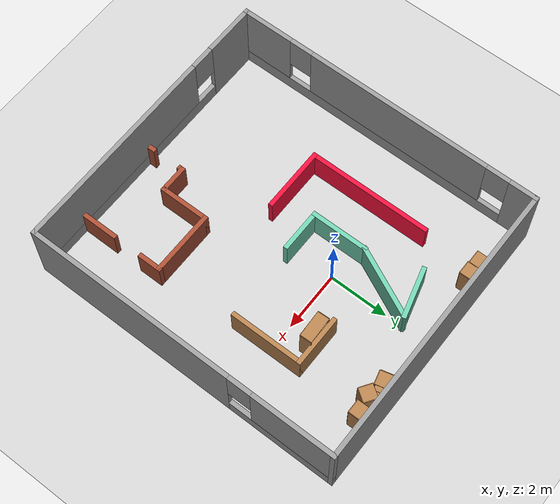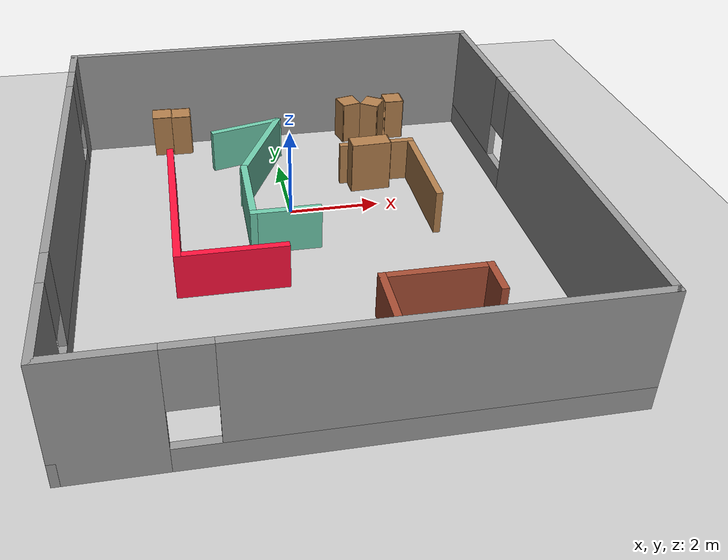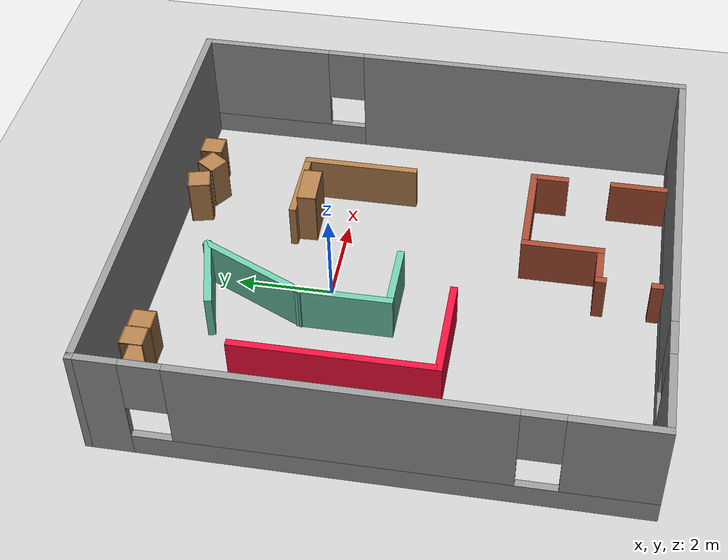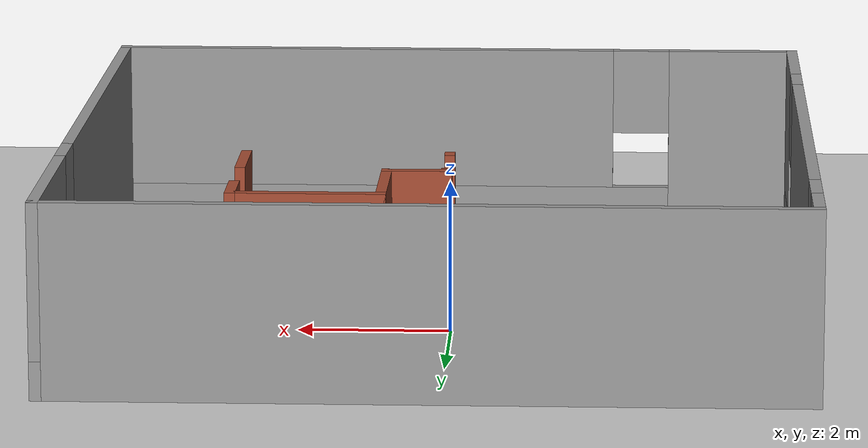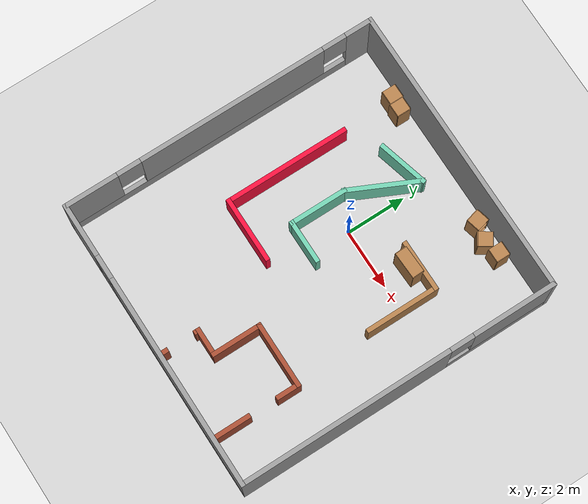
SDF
<sdf version="1.6">
 <world name="default">
  <model name="ground_plane">
   <static>1</static>
   <link name="link">
    <collision name="collision">
     <geometry><plane><normal>0 0 1</normal><size>100 100</size></plane></geometry>
     <surface>
      <contact><collide_bitmask>65535</collide_bitmask></contact>
      <friction><ode><mu>100</mu><mu2>50</mu2></ode></friction>
     </surface>
    </collision>
    <visual name="visual">
     <cast_shadows>0</cast_shadows>
     <geometry><plane><normal>0 0 1</normal><size>100 100</size></plane></geometry>
     <material>
      <script><uri>file://media/materials/scripts/gazebo.material</uri><name>Gazebo/Grey</name></script>
     </material>
    </visual>
   </link>
  </model>
  <model name="rightone">
   <pose>0.16977 -1.56578 0 0 -0 0</pose>
   <link name="Wall_16">
    <collision name="Wall_16_Collision">
     <geometry><box><size>4.25 0.15 1</size></box></geometry>
     <pose>0 0 0.5 0 -0 0</pose>
    </collision>
    <visual name="Wall_16_Visual">
     <pose>0 0 0.5 0 -0 0</pose>
     <geometry><box><size>4.25 0.15 1</size></box></geometry>
     <material>
      <script><uri>file://media/materials/scripts/gazebo.material</uri><name>Gazebo/Grey</name></script>
      <ambient>1 0.0627451 0.235294 1</ambient>
     </material>
     <meta><layer>0</layer></meta>
    </visual>
    <pose>-2.73877 0.989782 0 0 0 -1.5708</pose>
   </link>
   <link name="Wall_17">
    <collision name="Wall_17_Collision">
     <geometry><box><size>2.25 0.15 1</size></box></geometry>
     <pose>0 0 0.5 0 -0 0</pose>
    </collision>
    <visual name="Wall_17_Visual">
     <pose>0 0 0.5 0 -0 0</pose>
     <geometry><box><size>2.25 0.15 1</size></box></geometry>
     <material>
      <script><uri>file://media/materials/scripts/gazebo.material</uri><name>Gazebo/Grey</name></script>
      <ambient>1 0.0627451 0.235294 1</ambient>
     </material>
     <meta><layer>0</layer></meta>
    </visual>
    <pose>-1.68877 -1.06022 0 0 -0 0</pose>
   </link>
   <link name="Wall_20">
    <collision name="Wall_20_Collision">
     <geometry><box><size>1.75 0.15 1</size></box></geometry>
     <pose>0 0 0.5 0 -0 0</pose>
    </collision>
    <visual name="Wall_20_Visual">
     <pose>0 0 0.5 0 -0 0</pose>
     <geometry><box><size>1.75 0.15 1</size></box></geometry>
     <material>
      <script><uri>file://media/materials/scripts/gazebo.material</uri><name>Gazebo/Grey</name></script>
      <ambient>0.435294 0.796078 0.67451 1</ambient>
     </material>
     <meta><layer>0</layer></meta>
    </visual>
    <pose>-0.890549 3.96314 0 0 -0 0.261799</pose>
   </link>
   <link name="Wall_21">
    <collision name="Wall_21_Collision">
     <geometry><box><size>2.53984 0.15 1</size></box></geometry>
     <pose>0 0 0.5 0 -0 0</pose>
    </collision>
    <visual name="Wall_21_Visual">
     <pose>0 0 0.5 0 -0 0</pose>
     <geometry><box><size>2.53984 0.15 1</size></box></geometry>
     <material>
      <script><uri>file://media/materials/scripts/gazebo.material</uri><name>Gazebo/Grey</name></script>
      <ambient>0.435294 0.796078 0.67451 1</ambient>
     </material>
     <meta><layer>0</layer></meta>
    </visual>
    <pose>-0.630789 3.09099 0 0 0 -2.01452</pose>
   </link>
   <link name="Wall_22">
    <collision name="Wall_22_Collision">
     <geometry><box><size>2 0.15 1</size></box></geometry>
     <pose>0 0 0.5 0 -0 0</pose>
    </collision>
    <visual name="Wall_22_Visual">
     <pose>0 0 0.5 0 -0 0</pose>
     <geometry><box><size>2 0.15 1</size></box></geometry>
     <material>
      <script><uri>file://media/materials/scripts/gazebo.material</uri><name>Gazebo/Grey</name></script>
      <ambient>0.435294 0.796078 0.67451 1</ambient>
     </material>
     <meta><layer>0</layer></meta>
    </visual>
    <pose>-1.14377 1.08678 0 0 0 -1.5708</pose>
   </link>
   <link name="Wall_23">
    <collision name="Wall_23_Collision">
     <geometry><box><size>1.5 0.15 1</size></box></geometry>
     <pose>0 0 0.5 0 -0 0</pose>
    </collision>
    <visual name="Wall_23_Visual">
     <pose>0 0 0.5 0 -0 0</pose>
     <geometry><box><size>1.5 0.15 1</size></box></geometry>
     <material>
      <script><uri>file://media/materials/scripts/gazebo.material</uri><name>Gazebo/Grey</name></script>
      <ambient>0.435294 0.796078 0.67451 1</ambient>
     </material>
     <meta><layer>0</layer></meta>
    </visual>
    <pose>-0.468771 0.161782 0 0 -0 0</pose>
   </link>
   <link name="Wall_25">
    <collision name="Wall_25_Collision">
     <geometry><box><size>1.75 0.15 1</size></box></geometry>
     <pose>0 0 0.5 0 -0 0</pose>
    </collision>
    <visual name="Wall_25_Visual">
     <pose>0 0 0.5 0 -0 0</pose>
     <geometry><box><size>1.75 0.15 1</size></box></geometry>
     <material>
      <script><uri>file://media/materials/scripts/gazebo.material</uri><name>Gazebo/Wood</name></script>
      <ambient>1 1 1 1</ambient>
     </material>
     <meta><layer>0</layer></meta>
    </visual>
    <pose>2.02823 2.65378 0 0 -0 0</pose>
   </link>
   <link name="Wall_26">
    <collision name="Wall_26_Collision">
     <geometry><box><size>2.5 0.15 1</size></box></geometry>
     <pose>0 0 0.5 0 -0 0</pose>
    </collision>
    <visual name="Wall_26_Visual">
     <pose>0 0 0.5 0 -0 0</pose>
     <geometry><box><size>2.5 0.15 1</size></box></geometry>
     <material>
      <script><uri>file://media/materials/scripts/gazebo.material</uri><name>Gazebo/Wood</name></script>
      <ambient>1 1 1 1</ambient>
     </material>
     <meta><layer>0</layer></meta>
    </visual>
    <pose>2.82823 1.47878 0 0 0 -1.5708</pose>
   </link>
   <link name="Wall_28">
    <pose>0.109229 -4.59822 0 0 -0 1.5708</pose>
    <visual name="Wall_28_Visual_0">
     <pose>-0.567304 0 0.5 0 -0 0</pose>
     <geometry><box><size>0.379084 0.15 1</size></box></geometry>
     <material>
      <script><uri>file://media/materials/scripts/gazebo.material</uri><name>Gazebo/Bricks</name></script>
      <ambient>1 1 1 1</ambient>
     </material>
     <meta><layer>0</layer></meta>
    </visual>
    <collision name="Wall_28_Collision_0">
     <geometry><box><size>0.379084 0.15 1</size></box></geometry>
     <pose>-0.567304 0 0.5 0 -0 0</pose>
    </collision>
    <visual name="Wall_28_Visual_1">
     <pose>0.639542 0 0.5 0 -0 0</pose>
     <geometry><box><size>0.234608 0.15 1</size></box></geometry>
     <material>
      <script><uri>file://media/materials/scripts/gazebo.material</uri><name>Gazebo/Bricks</name></script>
      <ambient>1 1 1 1</ambient>
     </material>
     <meta><layer>0</layer></meta>
    </visual>
    <collision name="Wall_28_Collision_1">
     <geometry><box><size>0.234608 0.15 1</size></box></geometry>
     <pose>0.639542 0 0.5 0 -0 0</pose>
    </collision>
   </link>
   <link name="Wall_29">
    <collision name="Wall_29_Collision">
     <geometry><box><size>1 0.15 1</size></box></geometry>
     <pose>0 0 0.5 0 -0 0</pose>
    </collision>
    <visual name="Wall_29_Visual">
     <pose>0 0 0.5 0 -0 0</pose>
     <geometry><box><size>1 0.15 1</size></box></geometry>
     <material>
      <script><uri>file://media/materials/scripts/gazebo.material</uri><name>Gazebo/Bricks</name></script>
      <ambient>1 1 1 1</ambient>
     </material>
     <meta><layer>0</layer></meta>
    </visual>
    <pose>0.534229 -3.91622 0 0 -0 0</pose>
   </link>
   <link name="Wall_3">
    <pose>-4.8 0 0 0 0 -1.5708</pose>
    <visual name="Wall_3_Visual_0">
     <pose>-4.89136 0 1.25 0 -0 0</pose>
     <geometry><box><size>0.967284 0.15 2.5</size></box></geometry>
     <material>
      <script><uri>file://media/materials/scripts/gazebo.material</uri><name>Gazebo/Grey</name></script>
      <ambient>1 1 1 1</ambient>
     </material>
     <meta><layer>0</layer></meta>
    </visual>
    <collision name="Wall_3_Collision_0">
     <geometry><box><size>0.967284 0.15 2.5</size></box></geometry>
     <pose>-4.89136 0 1.25 0 -0 0</pose>
    </collision>
    <visual name="Wall_3_Visual_1">
     <pose>0.483642 0 0.25 0 -0 0</pose>
     <geometry><box><size>9.78272 0.15 0.5</size></box></geometry>
     <material>
      <script><uri>file://media/materials/scripts/gazebo.material</uri><name>Gazebo/Grey</name></script>
      <ambient>1 1 1 1</ambient>
     </material>
     <meta><layer>0</layer></meta>
    </visual>
    <collision name="Wall_3_Collision_1">
     <geometry><box><size>9.78272 0.15 0.5</size></box></geometry>
     <pose>0.483642 0 0.25 0 -0 0</pose>
    </collision>
    <visual name="Wall_3_Visual_2">
     <pose>-0.429713 0 1.5 0 -0 0</pose>
     <geometry><box><size>6.35601 0.15 2</size></box></geometry>
     <material>
      <script><uri>file://media/materials/scripts/gazebo.material</uri><name>Gazebo/Grey</name></script>
      <ambient>1 1 1 1</ambient>
     </material>
     <meta><layer>0</layer></meta>
    </visual>
    <collision name="Wall_3_Collision_2">
     <geometry><box><size>6.35601 0.15 2</size></box></geometry>
     <pose>-0.429713 0 1.5 0 -0 0</pose>
    </collision>
    <visual name="Wall_3_Visual_3">
     <pose>4.46164 0 1.5 0 -0 0</pose>
     <geometry><box><size>1.82671 0.15 2</size></box></geometry>
     <material>
      <script><uri>file://media/materials/scripts/gazebo.material</uri><name>Gazebo/Grey</name></script>
      <ambient>1 1 1 1</ambient>
     </material>
     <meta><layer>0</layer></meta>
    </visual>
    <collision name="Wall_3_Collision_3">
     <geometry><box><size>1.82671 0.15 2</size></box></geometry>
     <pose>4.46164 0 1.5 0 -0 0</pose>
    </collision>
    <visual name="Wall_3_Visual_4">
     <pose>-4.00772 0 1.9 0 -0 0</pose>
     <geometry><box><size>0.8 0.15 1.2</size></box></geometry>
     <material>
      <script><uri>file://media/materials/scripts/gazebo.material</uri><name>Gazebo/Grey</name></script>
      <ambient>1 1 1 1</ambient>
     </material>
     <meta><layer>0</layer></meta>
    </visual>
    <collision name="Wall_3_Collision_4">
     <geometry><box><size>0.8 0.15 1.2</size></box></geometry>
     <pose>-4.00772 0 1.9 0 -0 0</pose>
    </collision>
    <visual name="Wall_3_Visual_5">
     <pose>3.14829 0 1.9 0 -0 0</pose>
     <geometry><box><size>0.8 0.15 1.2</size></box></geometry>
     <material>
      <script><uri>file://media/materials/scripts/gazebo.material</uri><name>Gazebo/Grey</name></script>
      <ambient>1 1 1 1</ambient>
     </material>
     <meta><layer>0</layer></meta>
    </visual>
    <collision name="Wall_3_Collision_5">
     <geometry><box><size>0.8 0.15 1.2</size></box></geometry>
     <pose>3.14829 0 1.9 0 -0 0</pose>
    </collision>
   </link>
   <link name="Wall_30">
    <collision name="Wall_30_Collision">
     <geometry><box><size>1.736 0.15 1</size></box></geometry>
     <pose>0 0 0.5 0 -0 0</pose>
    </collision>
    <visual name="Wall_30_Visual">
     <pose>0 0 0.5 0 -0 0</pose>
     <geometry><box><size>1.736 0.15 1</size></box></geometry>
     <material>
      <script><uri>file://media/materials/scripts/gazebo.material</uri><name>Gazebo/Bricks</name></script>
      <ambient>1 1 1 1</ambient>
     </material>
     <meta><layer>0</layer></meta>
    </visual>
    <pose>0.959229 -3.12322 0 0 -0 1.5708</pose>
   </link>
   <link name="Wall_31">
    <collision name="Wall_31_Collision">
     <geometry><box><size>2.25 0.15 1</size></box></geometry>
     <pose>0 0 0.5 0 -0 0</pose>
    </collision>
    <visual name="Wall_31_Visual">
     <pose>0 0 0.5 0 -0 0</pose>
     <geometry><box><size>2.25 0.15 1</size></box></geometry>
     <material>
      <script><uri>file://media/materials/scripts/gazebo.material</uri><name>Gazebo/Bricks</name></script>
      <ambient>1 1 1 1</ambient>
     </material>
     <meta><layer>0</layer></meta>
    </visual>
    <pose>2.00923 -2.33022 0 0 -0 0</pose>
   </link>
   <link name="Wall_32">
    <pose>3.05923 -3.75522 0 0 0 -1.5708</pose>
    <visual name="Wall_32_Visual_0">
     <pose>-1.08452 0 0.5 0 -0 0</pose>
     <geometry><box><size>0.830966 0.15 1</size></box></geometry>
     <material>
      <script><uri>file://media/materials/scripts/gazebo.material</uri><name>Gazebo/Bricks</name></script>
      <ambient>1 1 1 1</ambient>
     </material>
     <meta><layer>0</layer></meta>
    </visual>
    <collision name="Wall_32_Collision_0">
     <geometry><box><size>0.830966 0.15 1</size></box></geometry>
     <pose>-1.08452 0 0.5 0 -0 0</pose>
    </collision>
    <visual name="Wall_32_Visual_1">
     <pose>0.865483 0 0.5 0 -0 0</pose>
     <geometry><box><size>1.26903 0.15 1</size></box></geometry>
     <material>
      <script><uri>file://media/materials/scripts/gazebo.material</uri><name>Gazebo/Bricks</name></script>
      <ambient>1 1 1 1</ambient>
     </material>
     <meta><layer>0</layer></meta>
    </visual>
    <collision name="Wall_32_Collision_1">
     <geometry><box><size>1.26903 0.15 1</size></box></geometry>
     <pose>0.865483 0 0.5 0 -0 0</pose>
    </collision>
   </link>
   <link name="Wall_4">
    <pose>0 -5.3 0 0 -0 0</pose>
    <visual name="Wall_4_Visual_0">
     <pose>-3.95911 0 1.25 0 -0 0</pose>
     <geometry><box><size>1.83179 0.15 2.5</size></box></geometry>
     <material>
      <script><uri>file://media/materials/scripts/gazebo.material</uri><name>Gazebo/Grey</name></script>
      <ambient>1 1 1 1</ambient>
     </material>
     <meta><layer>0</layer></meta>
    </visual>
    <collision name="Wall_4_Collision_0">
     <geometry><box><size>1.83179 0.15 2.5</size></box></geometry>
     <pose>-3.95911 0 1.25 0 -0 0</pose>
    </collision>
    <visual name="Wall_4_Visual_1">
     <pose>0.915894 0 0.25 0 -0 0</pose>
     <geometry><box><size>7.91821 0.15 0.5</size></box></geometry>
     <material>
      <script><uri>file://media/materials/scripts/gazebo.material</uri><name>Gazebo/Grey</name></script>
      <ambient>1 1 1 1</ambient>
     </material>
     <meta><layer>0</layer></meta>
    </visual>
    <collision name="Wall_4_Collision_1">
     <geometry><box><size>7.91821 0.15 0.5</size></box></geometry>
     <pose>0.915894 0 0.25 0 -0 0</pose>
    </collision>
    <visual name="Wall_4_Visual_2">
     <pose>1.31589 0 1.5 0 -0 0</pose>
     <geometry><box><size>7.11821 0.15 2</size></box></geometry>
     <material>
      <script><uri>file://media/materials/scripts/gazebo.material</uri><name>Gazebo/Grey</name></script>
      <ambient>1 1 1 1</ambient>
     </material>
     <meta><layer>0</layer></meta>
    </visual>
    <collision name="Wall_4_Collision_2">
     <geometry><box><size>7.11821 0.15 2</size></box></geometry>
     <pose>1.31589 0 1.5 0 -0 0</pose>
    </collision>
    <visual name="Wall_4_Visual_3">
     <pose>-2.64321 0 1.9 0 -0 0</pose>
     <geometry><box><size>0.8 0.15 1.2</size></box></geometry>
     <material>
      <script><uri>file://media/materials/scripts/gazebo.material</uri><name>Gazebo/Grey</name></script>
      <ambient>1 1 1 1</ambient>
     </material>
     <meta><layer>0</layer></meta>
    </visual>
    <collision name="Wall_4_Collision_3">
     <geometry><box><size>0.8 0.15 1.2</size></box></geometry>
     <pose>-2.64321 0 1.9 0 -0 0</pose>
    </collision>
   </link>
   <link name="Wall_5">
    <pose>4.8 0 0 0 -0 1.5708</pose>
    <visual name="Wall_5_Visual_0">
     <pose>-1.8194 0 1.25 0 -0 0</pose>
     <geometry><box><size>7.11119 0.15 2.5</size></box></geometry>
     <material>
      <script><uri>file://media/materials/scripts/gazebo.material</uri><name>Gazebo/Grey</name></script>
      <ambient>1 1 1 1</ambient>
     </material>
     <meta><layer>0</layer></meta>
    </visual>
    <collision name="Wall_5_Collision_0">
     <geometry><box><size>7.11119 0.15 2.5</size></box></geometry>
     <pose>-1.8194 0 1.25 0 -0 0</pose>
    </collision>
    <visual name="Wall_5_Visual_1">
     <pose>3.5556 0 0.25 0 -0 0</pose>
     <geometry><box><size>3.63881 0.15 0.5</size></box></geometry>
     <material>
      <script><uri>file://media/materials/scripts/gazebo.material</uri><name>Gazebo/Grey</name></script>
      <ambient>1 1 1 1</ambient>
     </material>
     <meta><layer>0</layer></meta>
    </visual>
    <collision name="Wall_5_Collision_1">
     <geometry><box><size>3.63881 0.15 0.5</size></box></geometry>
     <pose>3.5556 0 0.25 0 -0 0</pose>
    </collision>
    <visual name="Wall_5_Visual_2">
     <pose>3.9556 0 1.5 0 -0 0</pose>
     <geometry><box><size>2.83881 0.15 2</size></box></geometry>
     <material>
      <script><uri>file://media/materials/scripts/gazebo.material</uri><name>Gazebo/Grey</name></script>
      <ambient>1 1 1 1</ambient>
     </material>
     <meta><layer>0</layer></meta>
    </visual>
    <collision name="Wall_5_Collision_2">
     <geometry><box><size>2.83881 0.15 2</size></box></geometry>
     <pose>3.9556 0 1.5 0 -0 0</pose>
    </collision>
    <visual name="Wall_5_Visual_3">
     <pose>2.13619 0 1.9 0 -0 0</pose>
     <geometry><box><size>0.8 0.15 1.2</size></box></geometry>
     <material>
      <script><uri>file://media/materials/scripts/gazebo.material</uri><name>Gazebo/Grey</name></script>
      <ambient>1 1 1 1</ambient>
     </material>
     <meta><layer>0</layer></meta>
    </visual>
    <collision name="Wall_5_Collision_3">
     <geometry><box><size>0.8 0.15 1.2</size></box></geometry>
     <pose>2.13619 0 1.9 0 -0 0</pose>
    </collision>
   </link>
   <link name="Wall_6">
    <collision name="Wall_6_Collision">
     <geometry><box><size>9.75 0.15 2.5</size></box></geometry>
     <pose>0 0 1.25 0 -0 0</pose>
    </collision>
    <visual name="Wall_6_Visual">
     <pose>0 0 1.25 0 -0 0</pose>
     <geometry><box><size>9.75 0.15 2.5</size></box></geometry>
     <material>
      <script><uri>file://media/materials/scripts/gazebo.material</uri><name>Gazebo/Grey</name></script>
      <ambient>1 1 1 1</ambient>
     </material>
     <meta><layer>0</layer></meta>
    </visual>
    <pose>0 5.3 0 0 -0 3.14159</pose>
   </link>
   <static>1</static>
  </model>
  <model name="cabinet_0">
   <static>1</static>
   <link name="cabinet_bottom_plate">
    <inertial>
     <pose>0 0 -1 0 -0 0</pose>
     <inertia><ixx>2.05</ixx><ixy>0</ixy><ixz>0</ixz><iyy>2.05</iyy><iyz>0</iyz><izz>2.05</izz></inertia>
     <mass>25</mass>
    </inertial>
    <collision name="cabinet_bottom_plate_geom">
     <pose>0 0 0.01 0 -0 0</pose>
     <geometry><box><size>0.45 0.45 0.02</size></box></geometry>
    </collision>
    <visual name="cabinet_bottom_plate_geom_visual">
     <pose>0 0 0.01 0 -0 0</pose>
     <geometry><box><size>0.45 0.45 0.02</size></box></geometry>
     <material>
      <script><uri>file://media/materials/scripts/gazebo.material</uri><name>Gazebo/Wood</name></script>
     </material>
    </visual>
    <collision name="cabinet_bottom_plate_geom_cabinet_back_plate">
     <pose>0.235 0 0.51 0 -0 0</pose>
     <geometry><box><size>0.02 0.45 1.02</size></box></geometry>
    </collision>
    <visual name="cabinet_bottom_plate_geom_cabinet_back_plate_visual">
     <pose>0.235 0 0.51 0 -0 0</pose>
     <geometry><box><size>0.02 0.45 1.02</size></box></geometry>
     <material>
      <script><uri>file://media/materials/scripts/gazebo.material</uri><name>Gazebo/Wood</name></script>
     </material>
    </visual>
    <collision name="cabinet_bottom_plate_geom_cabinet_left_plate">
     <pose>0 0.235 0.51 0 -0 0</pose>
     <geometry><box><size>0.45 0.02 1.02</size></box></geometry>
    </collision>
    <visual name="cabinet_bottom_plate_geom_cabinet_left_plate_visual">
     <pose>0 0.235 0.51 0 -0 0</pose>
     <geometry><box><size>0.45 0.02 1.02</size></box></geometry>
     <material>
      <script><uri>file://media/materials/scripts/gazebo.material</uri><name>Gazebo/Wood</name></script>
     </material>
    </visual>
    <collision name="cabinet_bottom_plate_geom_cabinet_middle_plate">
     <pose>0 0 0.51 0 -0 0</pose>
     <geometry><box><size>0.45 0.45 0.02</size></box></geometry>
    </collision>
    <visual name="cabinet_bottom_plate_geom_cabinet_middle_plate_visual">
     <pose>0 0 0.51 0 -0 0</pose>
     <geometry><box><size>0.45 0.45 0.02</size></box></geometry>
     <material>
      <script><uri>file://media/materials/scripts/gazebo.material</uri><name>Gazebo/Wood</name></script>
     </material>
    </visual>
    <collision name="cabinet_bottom_plate_geom_cabinet_right_plate">
     <pose>0 -0.235 0.51 0 -0 0</pose>
     <geometry><box><size>0.45 0.02 1.02</size></box></geometry>
    </collision>
    <visual name="cabinet_bottom_plate_geom_cabinet_right_plate_visual">
     <pose>0 -0.235 0.51 0 -0 0</pose>
     <geometry><box><size>0.45 0.02 1.02</size></box></geometry>
     <material>
      <script><uri>file://media/materials/scripts/gazebo.material</uri><name>Gazebo/Wood</name></script>
     </material>
    </visual>
    <collision name="cabinet_bottom_plate_geom_cabinet_top_plate">
     <pose>0 0 1.01 0 -0 0</pose>
     <geometry><box><size>0.45 0.45 0.02</size></box></geometry>
    </collision>
    <visual name="cabinet_bottom_plate_geom_cabinet_top_plate_visual">
     <pose>0 0 1.01 0 -0 0</pose>
     <geometry><box><size>0.45 0.45 0.02</size></box></geometry>
     <material>
      <script><uri>file://media/materials/scripts/gazebo.material</uri><name>Gazebo/Wood</name></script>
     </material>
    </visual>
   </link>
   <pose>3.11683 3.28614 0 0 -0 0</pose>
  </model>
  <model name="cabinet_1">
   <static>1</static>
   <link name="cabinet_bottom_plate">
    <inertial>
     <pose>0 0 -1 0 -0 0</pose>
     <inertia><ixx>2.05</ixx><ixy>0</ixy><ixz>0</ixz><iyy>2.05</iyy><iyz>0</iyz><izz>2.05</izz></inertia>
     <mass>25</mass>
    </inertial>
    <collision name="cabinet_bottom_plate_geom">
     <pose>0 0 0.01 0 -0 0</pose>
     <geometry><box><size>0.45 0.45 0.02</size></box></geometry>
    </collision>
    <visual name="cabinet_bottom_plate_geom_visual">
     <pose>0 0 0.01 0 -0 0</pose>
     <geometry><box><size>0.45 0.45 0.02</size></box></geometry>
     <material>
      <script><uri>file://media/materials/scripts/gazebo.material</uri><name>Gazebo/Wood</name></script>
     </material>
    </visual>
    <collision name="cabinet_bottom_plate_geom_cabinet_back_plate">
     <pose>0.235 0 0.51 0 -0 0</pose>
     <geometry><box><size>0.02 0.45 1.02</size></box></geometry>
    </collision>
    <visual name="cabinet_bottom_plate_geom_cabinet_back_plate_visual">
     <pose>0.235 0 0.51 0 -0 0</pose>
     <geometry><box><size>0.02 0.45 1.02</size></box></geometry>
     <material>
      <script><uri>file://media/materials/scripts/gazebo.material</uri><name>Gazebo/Wood</name></script>
     </material>
    </visual>
    <collision name="cabinet_bottom_plate_geom_cabinet_left_plate">
     <pose>0 0.235 0.51 0 -0 0</pose>
     <geometry><box><size>0.45 0.02 1.02</size></box></geometry>
    </collision>
    <visual name="cabinet_bottom_plate_geom_cabinet_left_plate_visual">
     <pose>0 0.235 0.51 0 -0 0</pose>
     <geometry><box><size>0.45 0.02 1.02</size></box></geometry>
     <material>
      <script><uri>file://media/materials/scripts/gazebo.material</uri><name>Gazebo/Wood</name></script>
     </material>
    </visual>
    <collision name="cabinet_bottom_plate_geom_cabinet_middle_plate">
     <pose>0 0 0.51 0 -0 0</pose>
     <geometry><box><size>0.45 0.45 0.02</size></box></geometry>
    </collision>
    <visual name="cabinet_bottom_plate_geom_cabinet_middle_plate_visual">
     <pose>0 0 0.51 0 -0 0</pose>
     <geometry><box><size>0.45 0.45 0.02</size></box></geometry>
     <material>
      <script><uri>file://media/materials/scripts/gazebo.material</uri><name>Gazebo/Wood</name></script>
     </material>
    </visual>
    <collision name="cabinet_bottom_plate_geom_cabinet_right_plate">
     <pose>0 -0.235 0.51 0 -0 0</pose>
     <geometry><box><size>0.45 0.02 1.02</size></box></geometry>
    </collision>
    <visual name="cabinet_bottom_plate_geom_cabinet_right_plate_visual">
     <pose>0 -0.235 0.51 0 -0 0</pose>
     <geometry><box><size>0.45 0.02 1.02</size></box></geometry>
     <material>
      <script><uri>file://media/materials/scripts/gazebo.material</uri><name>Gazebo/Wood</name></script>
     </material>
    </visual>
    <collision name="cabinet_bottom_plate_geom_cabinet_top_plate">
     <pose>0 0 1.01 0 -0 0</pose>
     <geometry><box><size>0.45 0.45 0.02</size></box></geometry>
    </collision>
    <visual name="cabinet_bottom_plate_geom_cabinet_top_plate_visual">
     <pose>0 0 1.01 0 -0 0</pose>
     <geometry><box><size>0.45 0.45 0.02</size></box></geometry>
     <material>
      <script><uri>file://media/materials/scripts/gazebo.material</uri><name>Gazebo/Wood</name></script>
     </material>
    </visual>
   </link>
   <pose>2.56628 3.16563 0 0 0 -0.590228</pose>
  </model>
  <model name="cabinet_2">
   <static>1</static>
   <link name="cabinet_bottom_plate">
    <inertial>
     <pose>0 0 -1 0 -0 0</pose>
     <inertia><ixx>2.05</ixx><ixy>0</ixy><ixz>0</ixz><iyy>2.05</iyy><iyz>0</iyz><izz>2.05</izz></inertia>
     <mass>25</mass>
    </inertial>
    <collision name="cabinet_bottom_plate_geom">
     <pose>0 0 0.01 0 -0 0</pose>
     <geometry><box><size>0.45 0.45 0.02</size></box></geometry>
    </collision>
    <visual name="cabinet_bottom_plate_geom_visual">
     <pose>0 0 0.01 0 -0 0</pose>
     <geometry><box><size>0.45 0.45 0.02</size></box></geometry>
     <material>
      <script><uri>file://media/materials/scripts/gazebo.material</uri><name>Gazebo/Wood</name></script>
     </material>
    </visual>
    <collision name="cabinet_bottom_plate_geom_cabinet_back_plate">
     <pose>0.235 0 0.51 0 -0 0</pose>
     <geometry><box><size>0.02 0.45 1.02</size></box></geometry>
    </collision>
    <visual name="cabinet_bottom_plate_geom_cabinet_back_plate_visual">
     <pose>0.235 0 0.51 0 -0 0</pose>
     <geometry><box><size>0.02 0.45 1.02</size></box></geometry>
     <material>
      <script><uri>file://media/materials/scripts/gazebo.material</uri><name>Gazebo/Wood</name></script>
     </material>
    </visual>
    <collision name="cabinet_bottom_plate_geom_cabinet_left_plate">
     <pose>0 0.235 0.51 0 -0 0</pose>
     <geometry><box><size>0.45 0.02 1.02</size></box></geometry>
    </collision>
    <visual name="cabinet_bottom_plate_geom_cabinet_left_plate_visual">
     <pose>0 0.235 0.51 0 -0 0</pose>
     <geometry><box><size>0.45 0.02 1.02</size></box></geometry>
     <material>
      <script><uri>file://media/materials/scripts/gazebo.material</uri><name>Gazebo/Wood</name></script>
     </material>
    </visual>
    <collision name="cabinet_bottom_plate_geom_cabinet_middle_plate">
     <pose>0 0 0.51 0 -0 0</pose>
     <geometry><box><size>0.45 0.45 0.02</size></box></geometry>
    </collision>
    <visual name="cabinet_bottom_plate_geom_cabinet_middle_plate_visual">
     <pose>0 0 0.51 0 -0 0</pose>
     <geometry><box><size>0.45 0.45 0.02</size></box></geometry>
     <material>
      <script><uri>file://media/materials/scripts/gazebo.material</uri><name>Gazebo/Wood</name></script>
     </material>
    </visual>
    <collision name="cabinet_bottom_plate_geom_cabinet_right_plate">
     <pose>0 -0.235 0.51 0 -0 0</pose>
     <geometry><box><size>0.45 0.02 1.02</size></box></geometry>
    </collision>
    <visual name="cabinet_bottom_plate_geom_cabinet_right_plate_visual">
     <pose>0 -0.235 0.51 0 -0 0</pose>
     <geometry><box><size>0.45 0.02 1.02</size></box></geometry>
     <material>
      <script><uri>file://media/materials/scripts/gazebo.material</uri><name>Gazebo/Wood</name></script>
     </material>
    </visual>
    <collision name="cabinet_bottom_plate_geom_cabinet_top_plate">
     <pose>0 0 1.01 0 -0 0</pose>
     <geometry><box><size>0.45 0.45 0.02</size></box></geometry>
    </collision>
    <visual name="cabinet_bottom_plate_geom_cabinet_top_plate_visual">
     <pose>0 0 1.01 0 -0 0</pose>
     <geometry><box><size>0.45 0.45 0.02</size></box></geometry>
     <material>
      <script><uri>file://media/materials/scripts/gazebo.material</uri><name>Gazebo/Wood</name></script>
     </material>
    </visual>
   </link>
   <pose>1.97382 3.30444 0 0 0 -2.89637</pose>
  </model>
  <model name="bookshelf_1">
   <static>1</static>
   <link name="link">
    <inertial><mass>1</mass></inertial>
    <collision name="back">
     <pose>0 0.005 0.6 0 -0 0</pose>
     <geometry><box><size>0.9 0.01 1.2</size></box></geometry>
    </collision>
    <visual name="visual1">
     <pose>0 0.005 0.6 0 -0 0</pose>
     <geometry><box><size>0.9 0.01 1.2</size></box></geometry>
     <material>
      <script><uri>file://media/materials/scripts/gazebo.material</uri><name>Gazebo/Wood</name></script>
     </material>
    </visual>
    <collision name="left_side">
     <pose>0.45 -0.195 0.6 0 -0 0</pose>
     <geometry><box><size>0.02 0.4 1.2</size></box></geometry>
    </collision>
    <visual name="visual2">
     <pose>0.45 -0.195 0.6 0 -0 0</pose>
     <geometry><box><size>0.02 0.4 1.2</size></box></geometry>
     <material>
      <script><uri>file://media/materials/scripts/gazebo.material</uri><name>Gazebo/Wood</name></script>
     </material>
    </visual>
    <collision name="right_side">
     <pose>-0.45 -0.195 0.6 0 -0 0</pose>
     <geometry><box><size>0.02 0.4 1.2</size></box></geometry>
    </collision>
    <visual name="visual3">
     <pose>-0.45 -0.195 0.6 0 -0 0</pose>
     <geometry><box><size>0.02 0.4 1.2</size></box></geometry>
     <material>
      <script><uri>file://media/materials/scripts/gazebo.material</uri><name>Gazebo/Wood</name></script>
     </material>
    </visual>
    <collision name="bottom">
     <pose>0 -0.195 0.03 0 -0 0</pose>
     <geometry><box><size>0.88 0.4 0.06</size></box></geometry>
    </collision>
    <visual name="visual4">
     <pose>0 -0.195 0.03 0 -0 0</pose>
     <geometry><box><size>0.88 0.4 0.06</size></box></geometry>
     <material>
      <script><uri>file://media/materials/scripts/gazebo.material</uri><name>Gazebo/Wood</name></script>
     </material>
    </visual>
    <collision name="top">
     <pose>0 -0.195 1.19 0 -0 0</pose>
     <geometry><box><size>0.88 0.4 0.02</size></box></geometry>
    </collision>
    <visual name="visual5">
     <pose>0 -0.195 1.19 0 -0 0</pose>
     <geometry><box><size>0.88 0.4 0.02</size></box></geometry>
     <material>
      <script><uri>file://media/materials/scripts/gazebo.material</uri><name>Gazebo/Wood</name></script>
     </material>
    </visual>
    <collision name="low_shelf">
     <pose>0 -0.195 0.43 0 -0 0</pose>
     <geometry><box><size>0.88 0.4 0.02</size></box></geometry>
    </collision>
    <visual name="visual6">
     <pose>0 -0.195 0.43 0 -0 0</pose>
     <geometry><box><size>0.88 0.4 0.02</size></box></geometry>
     <material>
      <script><uri>file://media/materials/scripts/gazebo.material</uri><name>Gazebo/Wood</name></script>
     </material>
    </visual>
    <collision name="high_shelf">
     <pose>0 -0.195 0.8 0 -0 0</pose>
     <geometry><box><size>0.88 0.4 0.02</size></box></geometry>
    </collision>
    <visual name="visual7">
     <pose>0 -0.195 0.8 0 -0 0</pose>
     <geometry><box><size>0.88 0.4 0.02</size></box></geometry>
     <material>
      <script><uri>file://media/materials/scripts/gazebo.material</uri><name>Gazebo/Wood</name></script>
     </material>
    </visual>
   </link>
   <pose>1.97568 0.642025 0 0 0 -3.10606</pose>
  </model>
  <model name="cabinet_3">
   <static>1</static>
   <link name="cabinet_bottom_plate">
    <inertial>
     <pose>0 0 -1 0 -0 0</pose>
     <inertia><ixx>2.05</ixx><ixy>0</ixy><ixz>0</ixz><iyy>2.05</iyy><iyz>0</iyz><izz>2.05</izz></inertia>
     <mass>25</mass>
    </inertial>
    <collision name="cabinet_bottom_plate_geom">
     <pose>0 0 0.01 0 -0 0</pose>
     <geometry><box><size>0.45 0.45 0.02</size></box></geometry>
    </collision>
    <visual name="cabinet_bottom_plate_geom_visual">
     <pose>0 0 0.01 0 -0 0</pose>
     <geometry><box><size>0.45 0.45 0.02</size></box></geometry>
     <material>
      <script><uri>file://media/materials/scripts/gazebo.material</uri><name>Gazebo/Wood</name></script>
     </material>
    </visual>
    <collision name="cabinet_bottom_plate_geom_cabinet_back_plate">
     <pose>0.235 0 0.51 0 -0 0</pose>
     <geometry><box><size>0.02 0.45 1.02</size></box></geometry>
    </collision>
    <visual name="cabinet_bottom_plate_geom_cabinet_back_plate_visual">
     <pose>0.235 0 0.51 0 -0 0</pose>
     <geometry><box><size>0.02 0.45 1.02</size></box></geometry>
     <material>
      <script><uri>file://media/materials/scripts/gazebo.material</uri><name>Gazebo/Wood</name></script>
     </material>
    </visual>
    <collision name="cabinet_bottom_plate_geom_cabinet_left_plate">
     <pose>0 0.235 0.51 0 -0 0</pose>
     <geometry><box><size>0.45 0.02 1.02</size></box></geometry>
    </collision>
    <visual name="cabinet_bottom_plate_geom_cabinet_left_plate_visual">
     <pose>0 0.235 0.51 0 -0 0</pose>
     <geometry><box><size>0.45 0.02 1.02</size></box></geometry>
     <material>
      <script><uri>file://media/materials/scripts/gazebo.material</uri><name>Gazebo/Wood</name></script>
     </material>
    </visual>
    <collision name="cabinet_bottom_plate_geom_cabinet_middle_plate">
     <pose>0 0 0.51 0 -0 0</pose>
     <geometry><box><size>0.45 0.45 0.02</size></box></geometry>
    </collision>
    <visual name="cabinet_bottom_plate_geom_cabinet_middle_plate_visual">
     <pose>0 0 0.51 0 -0 0</pose>
     <geometry><box><size>0.45 0.45 0.02</size></box></geometry>
     <material>
      <script><uri>file://media/materials/scripts/gazebo.material</uri><name>Gazebo/Wood</name></script>
     </material>
    </visual>
    <collision name="cabinet_bottom_plate_geom_cabinet_right_plate">
     <pose>0 -0.235 0.51 0 -0 0</pose>
     <geometry><box><size>0.45 0.02 1.02</size></box></geometry>
    </collision>
    <visual name="cabinet_bottom_plate_geom_cabinet_right_plate_visual">
     <pose>0 -0.235 0.51 0 -0 0</pose>
     <geometry><box><size>0.45 0.02 1.02</size></box></geometry>
     <material>
      <script><uri>file://media/materials/scripts/gazebo.material</uri><name>Gazebo/Wood</name></script>
     </material>
    </visual>
    <collision name="cabinet_bottom_plate_geom_cabinet_top_plate">
     <pose>0 0 1.01 0 -0 0</pose>
     <geometry><box><size>0.45 0.45 0.02</size></box></geometry>
    </collision>
    <visual name="cabinet_bottom_plate_geom_cabinet_top_plate_visual">
     <pose>0 0 1.01 0 -0 0</pose>
     <geometry><box><size>0.45 0.45 0.02</size></box></geometry>
     <material>
      <script><uri>file://media/materials/scripts/gazebo.material</uri><name>Gazebo/Wood</name></script>
     </material>
    </visual>
   </link>
   <pose>-2.71094 3.34006 0 0 -0 0</pose>
  </model>
  <model name="cabinet_3_clone">
   <static>1</static>
   <link name="cabinet_bottom_plate">
    <inertial>
     <pose>0 0 -1 0 -0 0</pose>
     <inertia><ixx>2.05</ixx><ixy>0</ixy><ixz>0</ixz><iyy>2.05</iyy><iyz>0</iyz><izz>2.05</izz></inertia>
     <mass>25</mass>
    </inertial>
    <collision name="cabinet_bottom_plate_geom">
     <pose>0 0 0.01 0 -0 0</pose>
     <geometry><box><size>0.45 0.45 0.02</size></box></geometry>
    </collision>
    <visual name="cabinet_bottom_plate_geom_visual">
     <pose>0 0 0.01 0 -0 0</pose>
     <geometry><box><size>0.45 0.45 0.02</size></box></geometry>
     <material>
      <script><uri>file://media/materials/scripts/gazebo.material</uri><name>Gazebo/Wood</name></script>
     </material>
    </visual>
    <collision name="cabinet_bottom_plate_geom_cabinet_back_plate">
     <pose>0.235 0 0.51 0 -0 0</pose>
     <geometry><box><size>0.02 0.45 1.02</size></box></geometry>
    </collision>
    <visual name="cabinet_bottom_plate_geom_cabinet_back_plate_visual">
     <pose>0.235 0 0.51 0 -0 0</pose>
     <geometry><box><size>0.02 0.45 1.02</size></box></geometry>
     <material>
      <script><uri>file://media/materials/scripts/gazebo.material</uri><name>Gazebo/Wood</name></script>
     </material>
    </visual>
    <collision name="cabinet_bottom_plate_geom_cabinet_left_plate">
     <pose>0 0.235 0.51 0 -0 0</pose>
     <geometry><box><size>0.45 0.02 1.02</size></box></geometry>
    </collision>
    <visual name="cabinet_bottom_plate_geom_cabinet_left_plate_visual">
     <pose>0 0.235 0.51 0 -0 0</pose>
     <geometry><box><size>0.45 0.02 1.02</size></box></geometry>
     <material>
      <script><uri>file://media/materials/scripts/gazebo.material</uri><name>Gazebo/Wood</name></script>
     </material>
    </visual>
    <collision name="cabinet_bottom_plate_geom_cabinet_middle_plate">
     <pose>0 0 0.51 0 -0 0</pose>
     <geometry><box><size>0.45 0.45 0.02</size></box></geometry>
    </collision>
    <visual name="cabinet_bottom_plate_geom_cabinet_middle_plate_visual">
     <pose>0 0 0.51 0 -0 0</pose>
     <geometry><box><size>0.45 0.45 0.02</size></box></geometry>
     <material>
      <script><uri>file://media/materials/scripts/gazebo.material</uri><name>Gazebo/Wood</name></script>
     </material>
    </visual>
    <collision name="cabinet_bottom_plate_geom_cabinet_right_plate">
     <pose>0 -0.235 0.51 0 -0 0</pose>
     <geometry><box><size>0.45 0.02 1.02</size></box></geometry>
    </collision>
    <visual name="cabinet_bottom_plate_geom_cabinet_right_plate_visual">
     <pose>0 -0.235 0.51 0 -0 0</pose>
     <geometry><box><size>0.45 0.02 1.02</size></box></geometry>
     <material>
      <script><uri>file://media/materials/scripts/gazebo.material</uri><name>Gazebo/Wood</name></script>
     </material>
    </visual>
    <collision name="cabinet_bottom_plate_geom_cabinet_top_plate">
     <pose>0 0 1.01 0 -0 0</pose>
     <geometry><box><size>0.45 0.45 0.02</size></box></geometry>
    </collision>
    <visual name="cabinet_bottom_plate_geom_cabinet_top_plate_visual">
     <pose>0 0 1.01 0 -0 0</pose>
     <geometry><box><size>0.45 0.45 0.02</size></box></geometry>
     <material>
      <script><uri>file://media/materials/scripts/gazebo.material</uri><name>Gazebo/Wood</name></script>
     </material>
    </visual>
   </link>
   <pose>-2.25976 3.31086 0 0 -0 0</pose>
  </model>
 </world>
</sdf>
